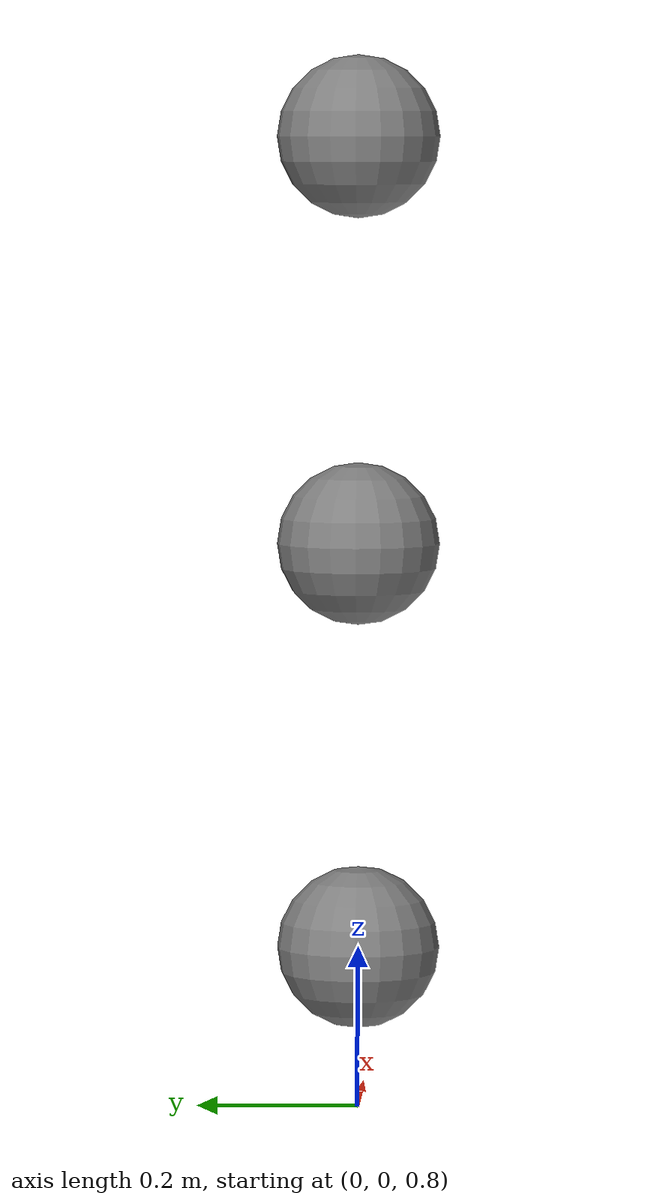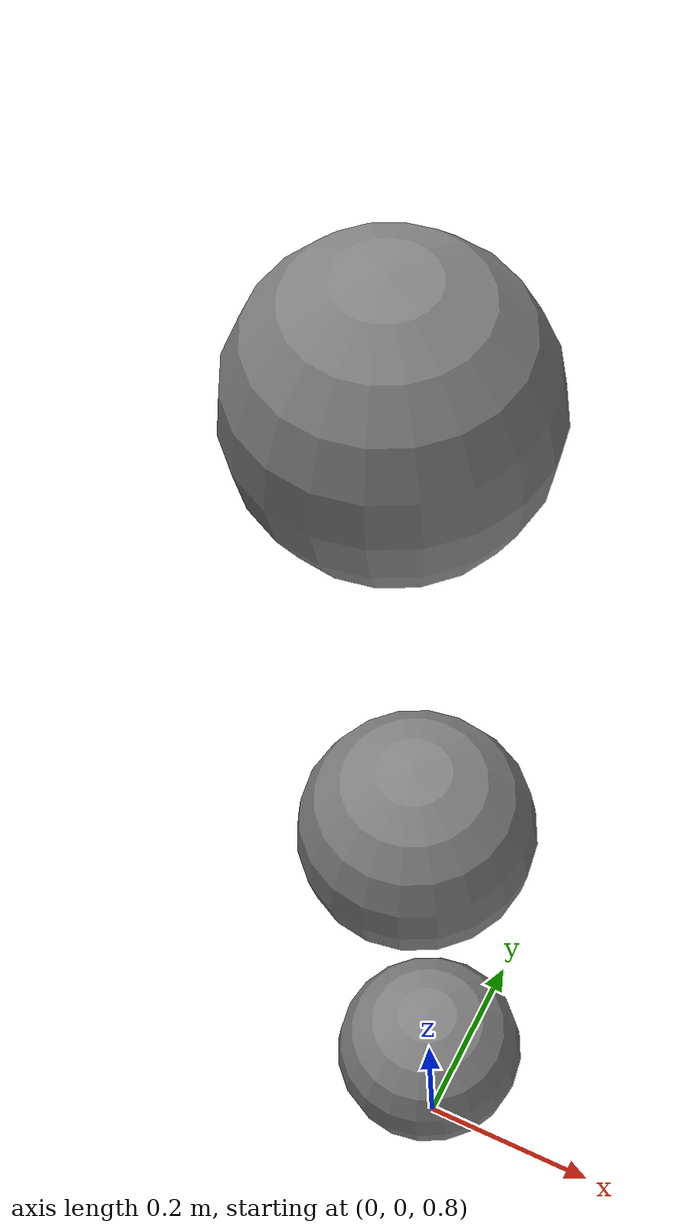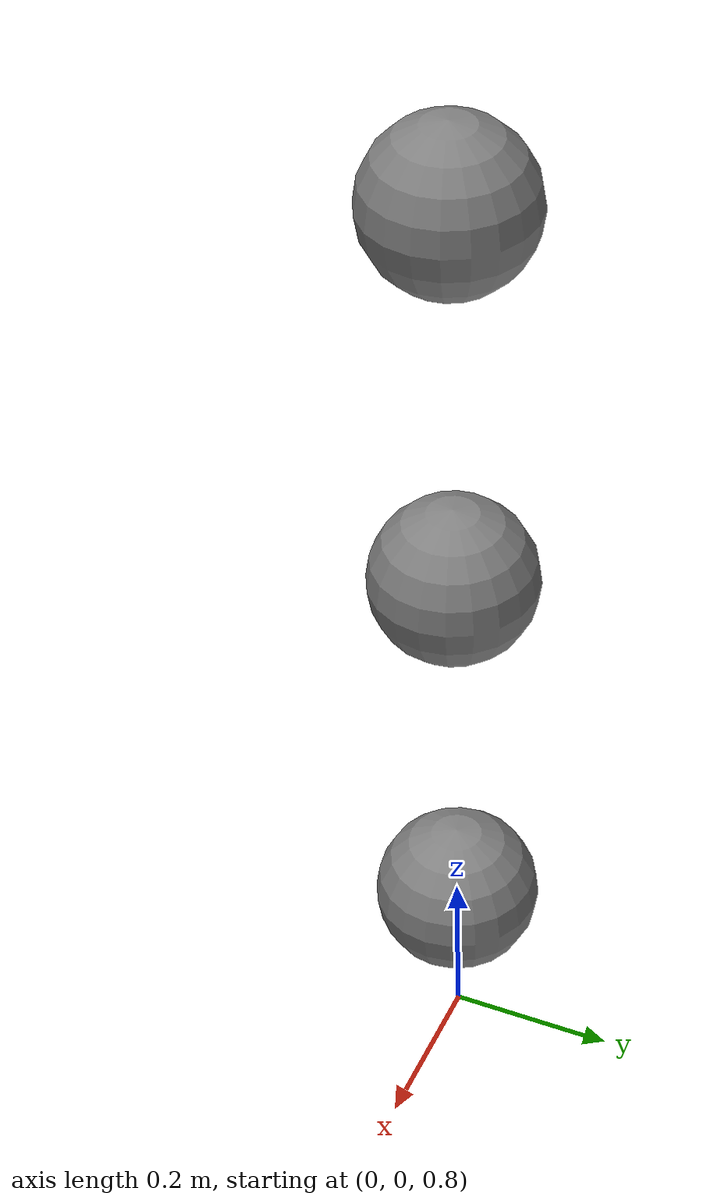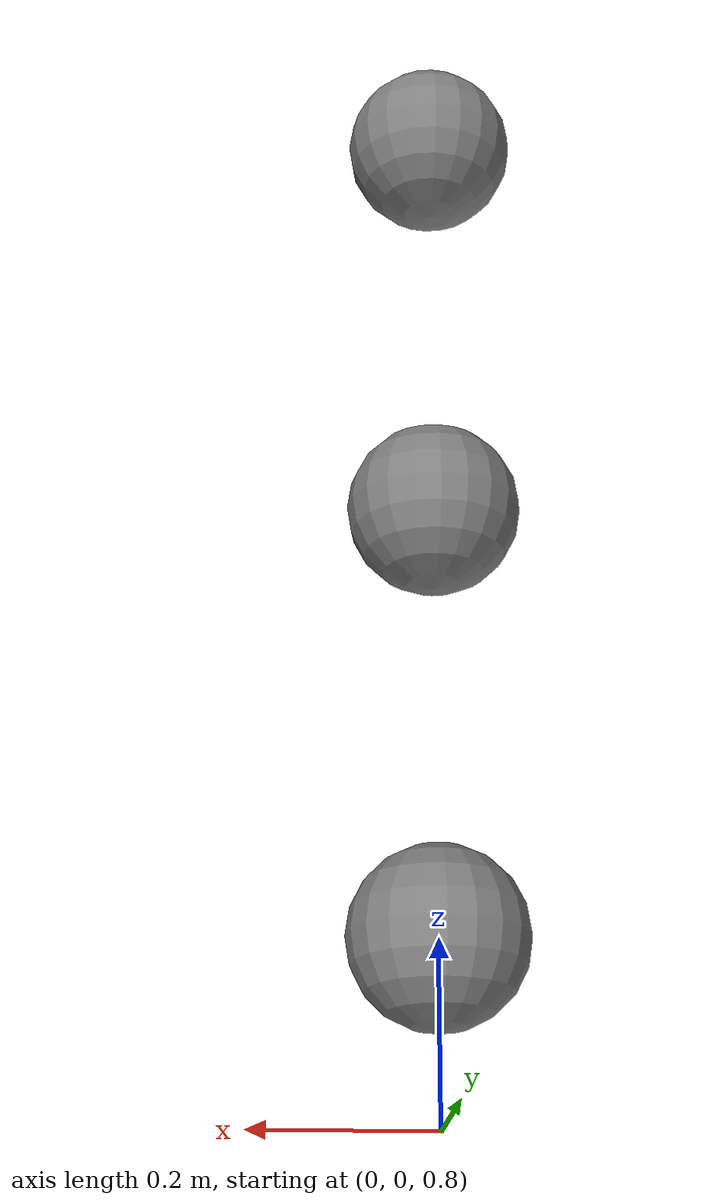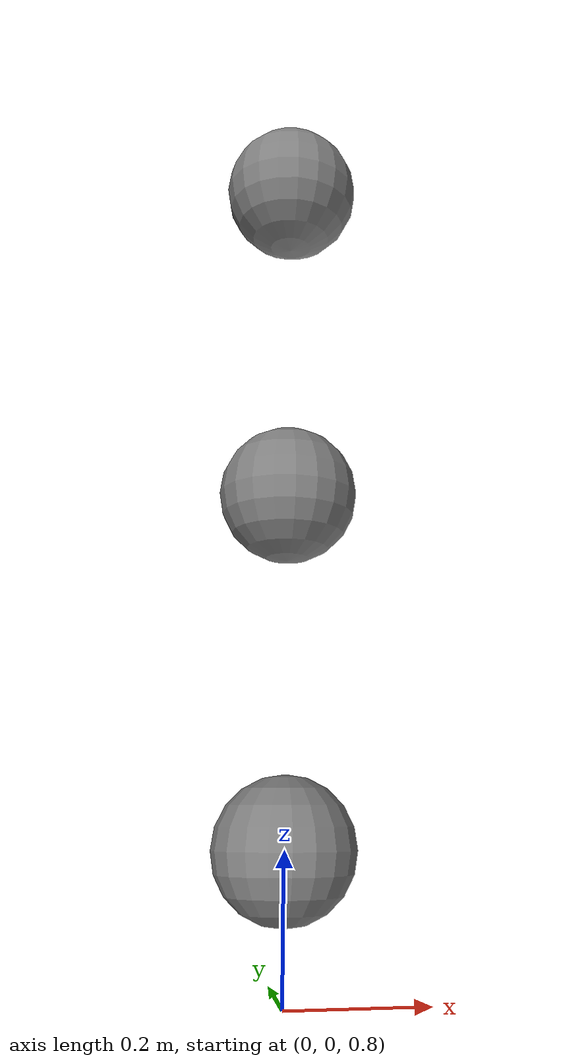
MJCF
<mujoco model="mixed">
            <default>
                <joint damping="0.2" stiffness="10.0"/>
                <default class="stiff">
                    <joint damping="5.0" stiffness="100.0"/>
                </default>
            </default>
            <worldbody>
                <body name="b1" pos="0 0 1">
                    <joint name="j_root" type="hinge" axis="0 1 0"/>
                    <geom type="sphere" size="0.1" mass="1.0"/>
                    <body name="b2" pos="0 0 0.5">
                        <joint name="j_stiff" type="hinge" axis="0 1 0" class="stiff"/>
                        <geom type="sphere" size="0.1" mass="1.0"/>
                        <body name="b3" pos="0 0 0.5">
                            <joint name="j_override" type="hinge" axis="0 1 0" class="stiff" damping="99.0"/>
                            <geom type="sphere" size="0.1" mass="1.0"/>
                        </body>
                    </body>
                </body>
            </worldbody>
        </mujoco>
